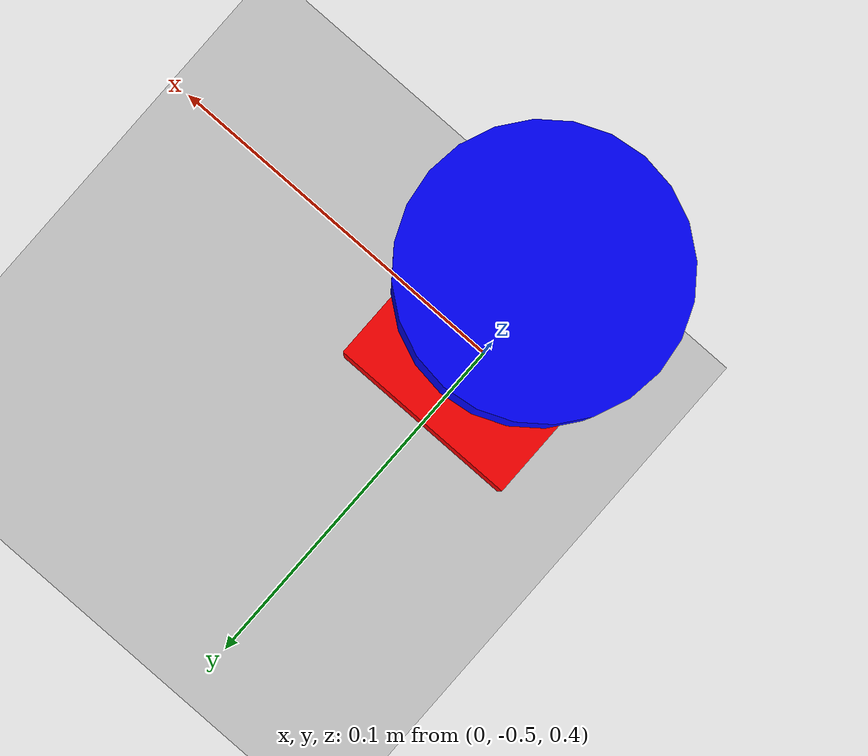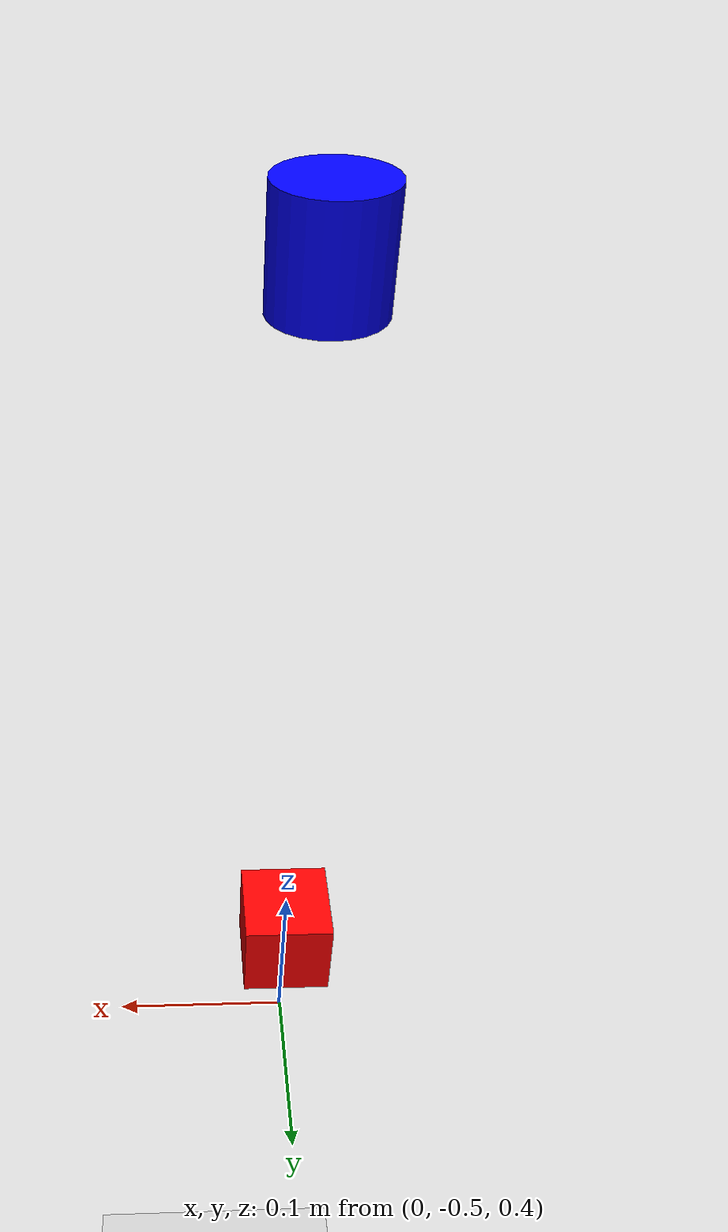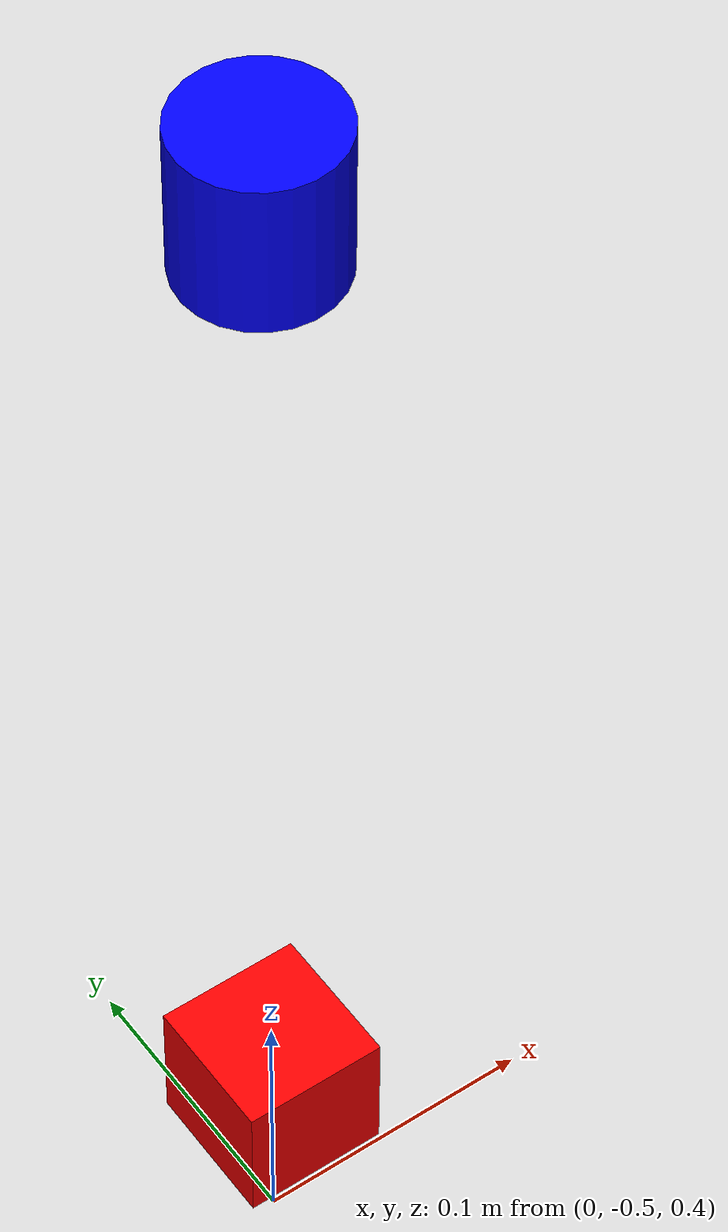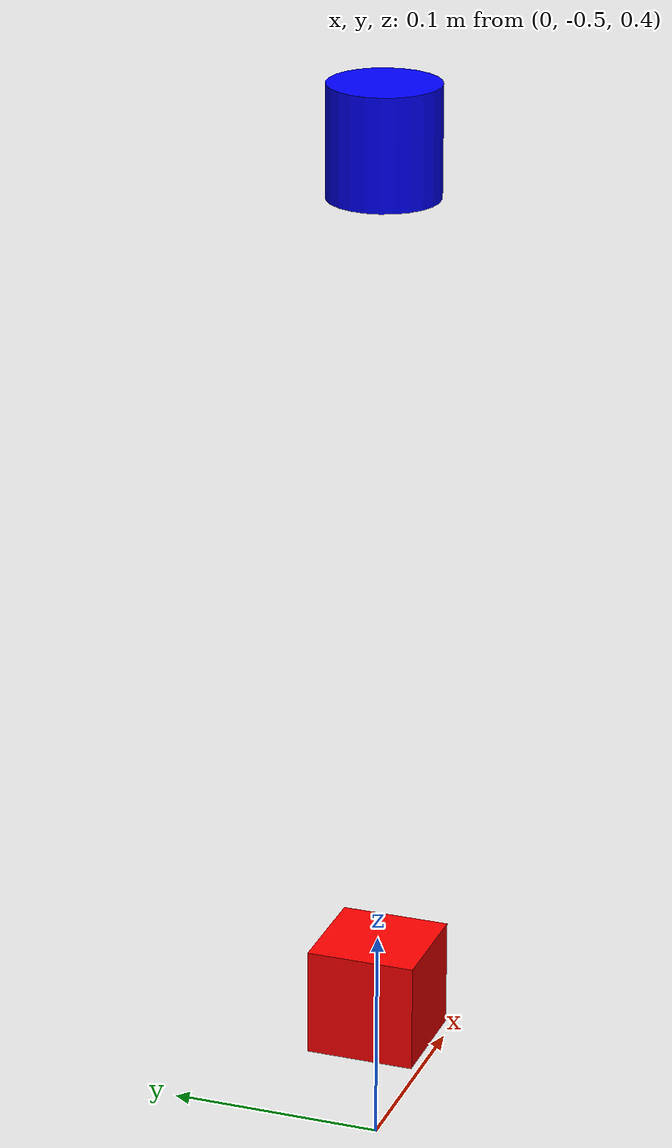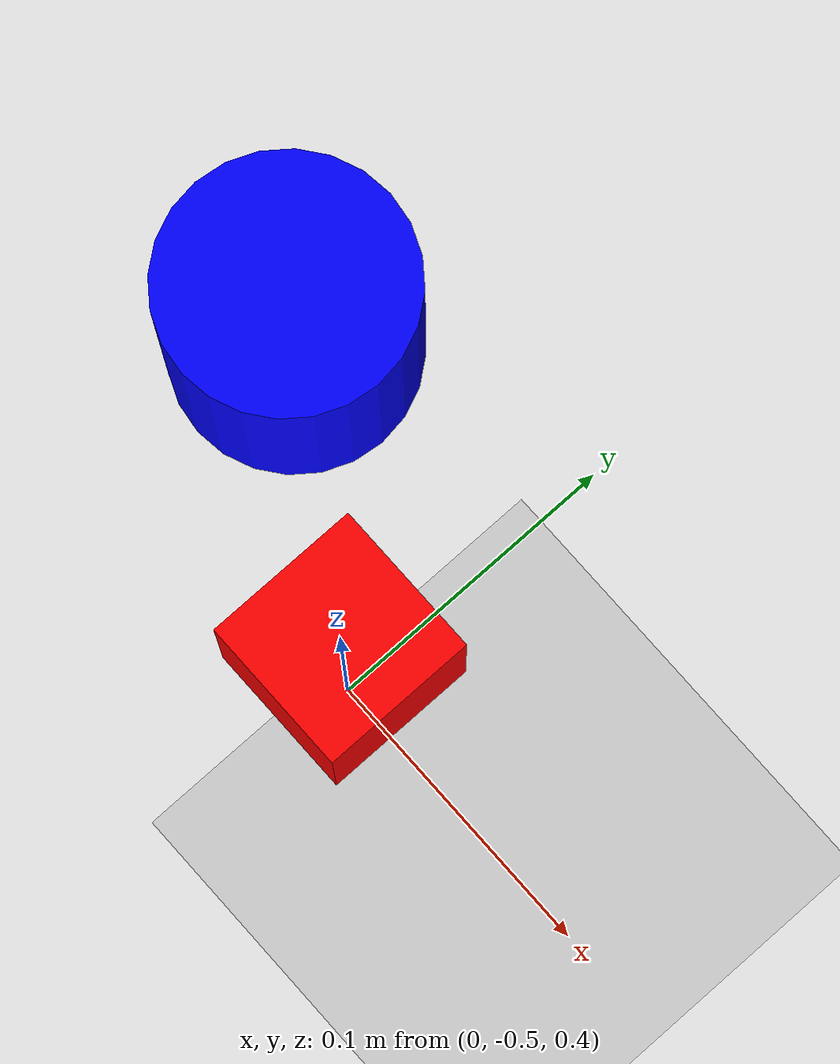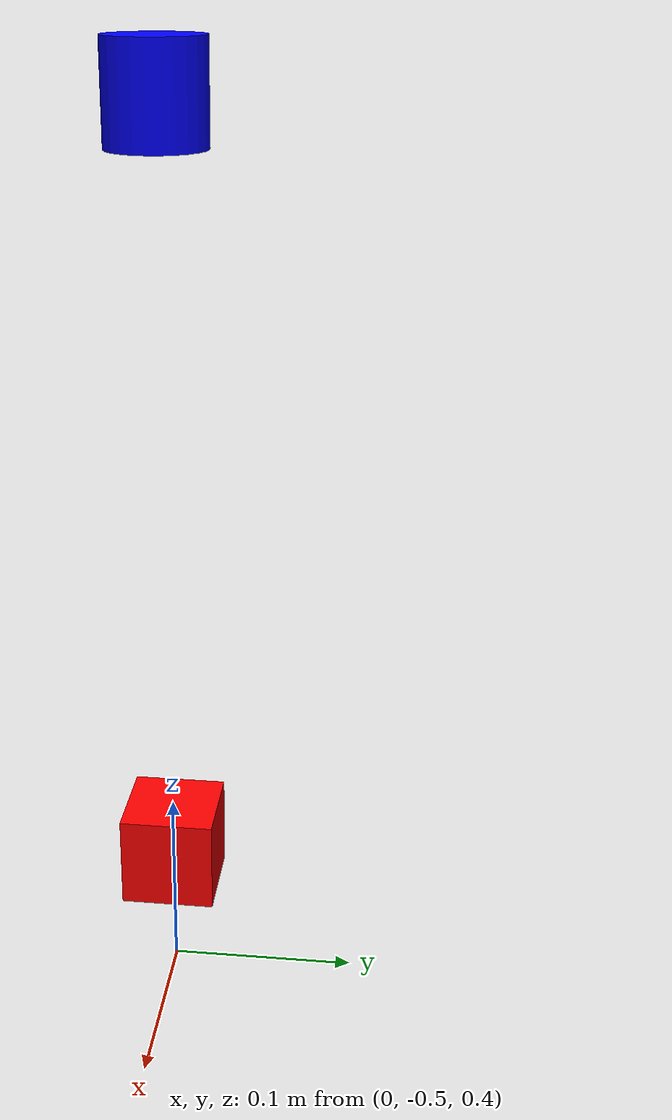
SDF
<?xml version="1.0" ?>
<sdf version="1.6">
  <world name="pick_and_place_world">
    <!-- Physics settings optimized for pick and place -->
    <physics type="ode">
      <max_step_size>0.001</max_step_size>
      <real_time_factor>1</real_time_factor>
      <real_time_update_rate>1000</real_time_update_rate>
      <ode>
        <solver>
          <type>quick</type>
          <iters>50</iters>
          <sor>1.3</sor>
        </solver>
        <constraints>
          <cfm>0.0</cfm>
          <erp>0.2</erp>
          <contact_max_correcting_vel>100.0</contact_max_correcting_vel>
          <contact_surface_layer>0.001</contact_surface_layer>
        </constraints>
      </ode>
    </physics>

    <!-- A global light source -->
    <include>
      <uri>model://sun</uri>
    </include>

    <!-- A ground plane -->
    <include>
      <uri>model://ground_plane</uri>
    </include>

    <!-- Cube for pick and place -->
    <model name="cube1">
      <pose>0 -0.5 0.475 0 0 0</pose>
      <link name="link">
        <inertial>
          <mass>0.1</mass>
          <inertia>
            <ixx>0.000167</ixx>
            <iyy>0.000167</iyy>
            <izz>0.000167</izz>
            <ixy>0</ixy>
            <ixz>0</ixz>
            <iyz>0</iyz>
          </inertia>
        </inertial>
        <collision name="collision">
          <geometry>
            <box>
              <size>0.05 0.05 0.05</size>
            </box>
          </geometry>
          <surface>
            <friction>
              <ode>
                <mu>1.0</mu>
                <mu2>1.0</mu2>
                <fdir1>0 0 1</fdir1>
                <slip1>0.0</slip1>
                <slip2>0.0</slip2>
              </ode>
            </friction>
            <contact>
              <ode>
                <kp>10000.0</kp>
                <kd>1.0</kd>
                <max_vel>0.1</max_vel>
                <min_depth>0.001</min_depth>
              </ode>
            </contact>
          </surface>
        </collision>
        <visual name="visual">
          <geometry>
            <box>
              <size>0.05 0.05 0.05</size>
            </box>
          </geometry>
          <material>
            <ambient>1 0 0 1</ambient>
            <diffuse>1 0 0 1</diffuse>
            <specular>0.1 0.1 0.1 1</specular>
          </material>
        </visual>
      </link>
    </model>

    <!-- Cylinder for pick and place -->
    <model name="cylinder1">
      <pose>0 -0.5 0.875 0 0 0</pose>
      <link name="link">
        <inertial>
          <mass>0.1</mass>
          <inertia>
            <ixx>0.000083</ixx>
            <iyy>0.000083</iyy>
            <izz>0.000125</izz>
            <ixy>0</ixy>
            <ixz>0</ixz>
            <iyz>0</iyz>
          </inertia>
        </inertial>
        <collision name="collision">
          <geometry>
            <cylinder>
              <radius>0.025</radius>
              <length>0.05</length>
            </cylinder>
          </geometry>
          <surface>
            <friction>
              <ode>
                <mu>1.0</mu>
                <mu2>1.0</mu2>
                <fdir1>0 0 1</fdir1>
                <slip1>0.0</slip1>
                <slip2>0.0</slip2>
              </ode>
            </friction>
            <contact>
              <ode>
                <kp>10000.0</kp>
                <kd>1.0</kd>
                <max_vel>0.1</max_vel>
                <min_depth>0.001</min_depth>
              </ode>
            </contact>
          </surface>
        </collision>
        <visual name="visual">
          <geometry>
            <cylinder>
              <radius>0.025</radius>
              <length>0.05</length>
            </cylinder>
          </geometry>
          <material>
            <ambient>0 0 1 1</ambient>
            <diffuse>0 0 1 1</diffuse>
            <specular>0.1 0.1 0.1 1</specular>
          </material>
        </visual>
      </link>
    </model>

    <!-- GUI camera position for better view -->
    <gui fullscreen='0'>
      <camera name='user_camera'>
        <pose>1.0 -1.0 0.8 0.0 0.4 2.2</pose>
        <view_controller>orbit</view_controller>
      </camera>
    </gui>
  </world>
</sdf>
